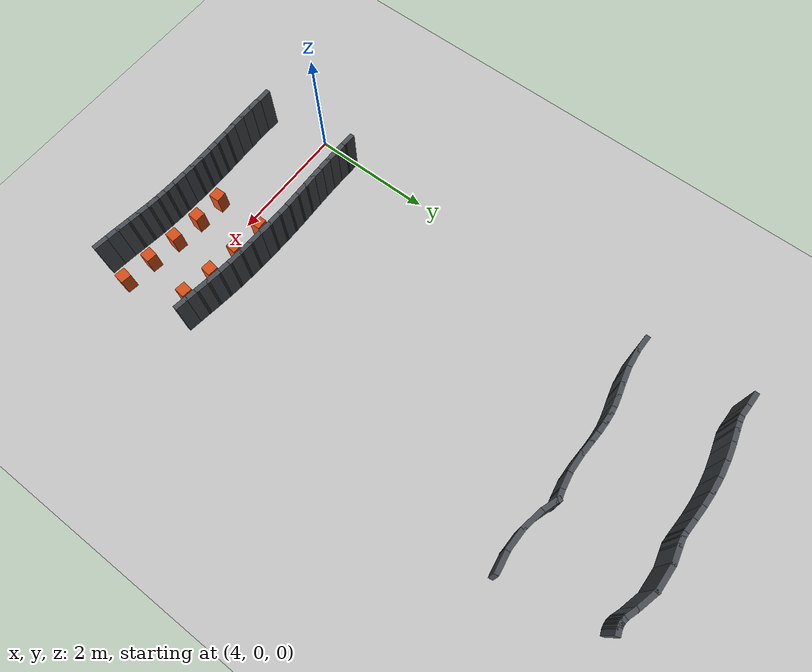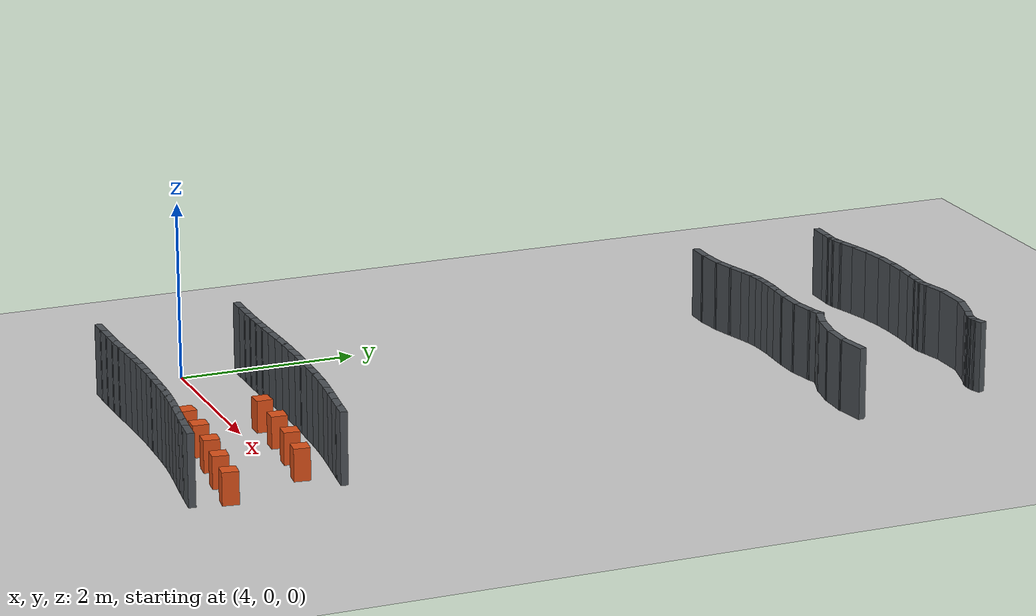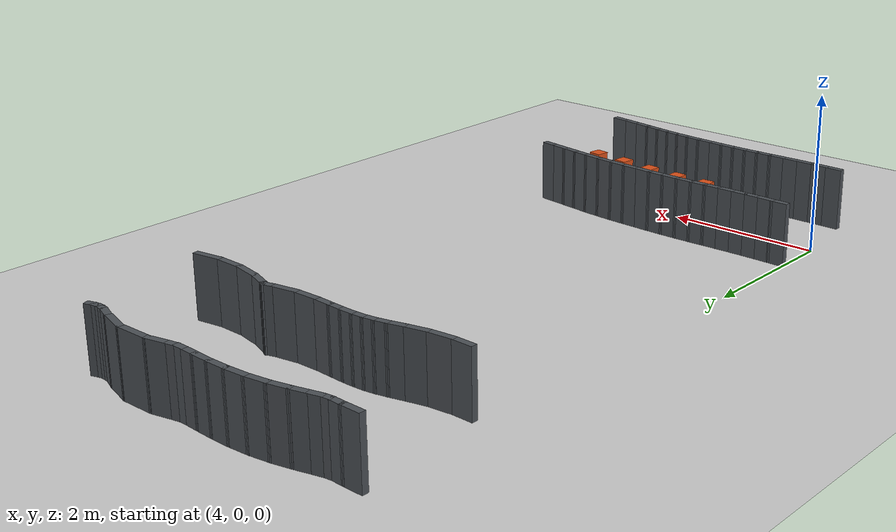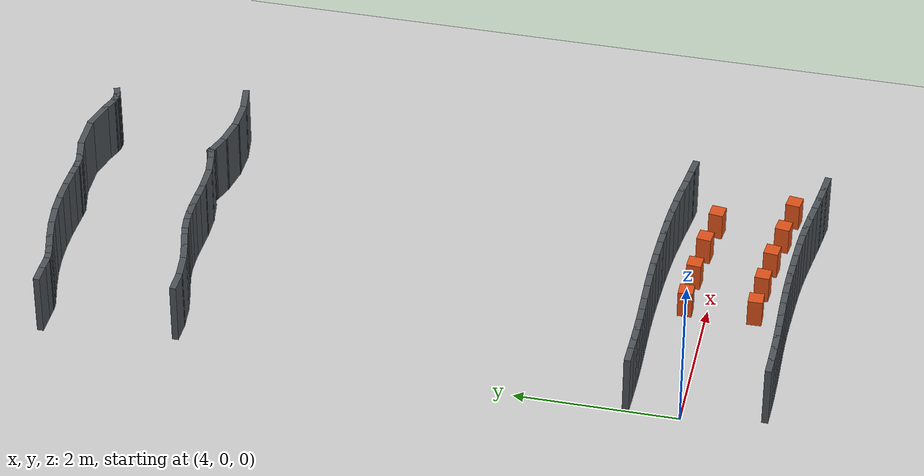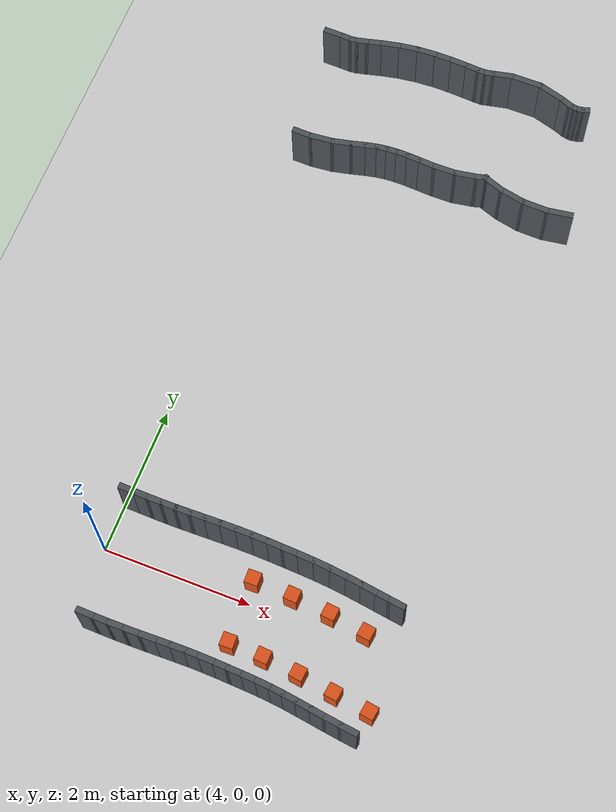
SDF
<sdf version="1.10">
 <world name="kookmin_xycar_track">
  <model name="slam_map">
   <static>true</static>
   <link name="map_floor">
    <pose>6.370000 4.105000 0 0 0 0</pose>
    <collision name="floor_collision">
     <pose>0 0 -0.020 0 0 0</pose>
     <geometry><box><size>22.500000 15.850000 0.040000</size></box></geometry>
     <surface><friction><ode><mu>50</mu><mu2>50</mu2></ode></friction></surface>
    </collision>
    <visual name="map_texture">
     <pose>0 0 0.002 0 0 0</pose>
     <geometry><plane><normal>0 0 1</normal><size>22.500000 15.850000</size></plane></geometry>
     <material>
      <pbr>
       <metal>
        <albedo_map>file://maps/slam_glass_balanced/slam_glass_balanced_texture.png</albedo_map>
        <roughness>1</roughness>
        <metalness>0</metalness>
       </metal>
      </pbr>
     </material>
    </visual>
   </link>
   <link name="route_wall_0004">
    <pose>7.930467 6.273002 0.400000 0 0 -2.993469138</pose>
    <collision name="collision">
     <geometry><box><size>0.377185 0.080000 0.800000</size></box></geometry>
    </collision>
    <visual name="visual">
     <geometry><box><size>0.377185 0.080000 0.800000</size></box></geometry>
     <material>
      <ambient>0.3000 0.3200 0.3400 1.0000</ambient>
      <diffuse>0.3000 0.3200 0.3400 1.0000</diffuse>
     </material>
    </visual>
   </link>
   <link name="route_wall_0005">
    <pose>7.593095 6.252334 0.400000 0 0 3.116901750</pose>
    <collision name="collision">
     <geometry><box><size>0.381355 0.080000 0.800000</size></box></geometry>
    </collision>
    <visual name="visual">
     <geometry><box><size>0.381355 0.080000 0.800000</size></box></geometry>
     <material>
      <ambient>0.3000 0.3200 0.3400 1.0000</ambient>
      <diffuse>0.3000 0.3200 0.3400 1.0000</diffuse>
     </material>
    </visual>
   </link>
   <link name="route_wall_0006">
    <pose>7.259372 6.289112 0.400000 0 0 2.944524645</pose>
    <collision name="collision">
     <geometry><box><size>0.372634 0.080000 0.800000</size></box></geometry>
    </collision>
    <visual name="visual">
     <geometry><box><size>0.372634 0.080000 0.800000</size></box></geometry>
     <material>
      <ambient>0.3000 0.3200 0.3400 1.0000</ambient>
      <diffuse>0.3000 0.3200 0.3400 1.0000</diffuse>
     </material>
    </visual>
   </link>
   <link name="route_wall_0007">
    <pose>6.981278 6.362665 0.400000 0 0 2.799193738</pose>
    <collision name="collision">
     <geometry><box><size>0.284166 0.080000 0.800000</size></box></geometry>
    </collision>
    <visual name="visual">
     <geometry><box><size>0.284166 0.080000 0.800000</size></box></geometry>
     <material>
      <ambient>0.3000 0.3200 0.3400 1.0000</ambient>
      <diffuse>0.3000 0.3200 0.3400 1.0000</diffuse>
     </material>
    </visual>
   </link>
   <link name="route_wall_0008">
    <pose>6.844776 6.416185 0.400000 0 0 2.613993806</pose>
    <collision name="collision">
     <geometry><box><size>0.089781 0.080000 0.800000</size></box></geometry>
    </collision>
    <visual name="visual">
     <geometry><box><size>0.089781 0.080000 0.800000</size></box></geometry>
     <material>
      <ambient>0.3000 0.3200 0.3400 1.0000</ambient>
      <diffuse>0.3000 0.3200 0.3400 1.0000</diffuse>
     </material>
    </visual>
   </link>
   <link name="route_wall_0009">
    <pose>6.833306 6.425547 0.400000 0 0 -0.305906039</pose>
    <collision name="collision">
     <geometry><box><size>0.061049 0.080000 0.800000</size></box></geometry>
    </collision>
    <visual name="visual">
     <geometry><box><size>0.061049 0.080000 0.800000</size></box></geometry>
     <material>
      <ambient>0.3000 0.3200 0.3400 1.0000</ambient>
      <diffuse>0.3000 0.3200 0.3400 1.0000</diffuse>
     </material>
    </visual>
   </link>
   <link name="route_wall_0010">
    <pose>6.776032 6.404820 0.400000 0 0 -2.886426362</pose>
    <collision name="collision">
     <geometry><box><size>0.179125 0.080000 0.800000</size></box></geometry>
    </collision>
    <visual name="visual">
     <geometry><box><size>0.179125 0.080000 0.800000</size></box></geometry>
     <material>
      <ambient>0.3000 0.3200 0.3400 1.0000</ambient>
      <diffuse>0.3000 0.3200 0.3400 1.0000</diffuse>
     </material>
    </visual>
   </link>
   <link name="route_wall_0011">
    <pose>6.565508 6.363926 0.400000 0 0 -2.980067752</pose>
    <collision name="collision">
     <geometry><box><size>0.330206 0.080000 0.800000</size></box></geometry>
    </collision>
    <visual name="visual">
     <geometry><box><size>0.330206 0.080000 0.800000</size></box></geometry>
     <material>
      <ambient>0.3000 0.3200 0.3400 1.0000</ambient>
      <diffuse>0.3000 0.3200 0.3400 1.0000</diffuse>
     </material>
    </visual>
   </link>
   <link name="route_wall_0012">
    <pose>6.276092 6.338794 0.400000 0 0 -3.129314466</pose>
    <collision name="collision">
     <geometry><box><size>0.332426 0.080000 0.800000</size></box></geometry>
    </collision>
    <visual name="visual">
     <geometry><box><size>0.332426 0.080000 0.800000</size></box></geometry>
     <material>
      <ambient>0.3000 0.3200 0.3400 1.0000</ambient>
      <diffuse>0.3000 0.3200 0.3400 1.0000</diffuse>
     </material>
    </visual>
   </link>
   <link name="route_wall_0013">
    <pose>6.018642 6.343261 0.400000 0 0 3.085369669</pose>
    <collision name="collision">
     <geometry><box><size>0.262846 0.080000 0.800000</size></box></geometry>
    </collision>
    <visual name="visual">
     <geometry><box><size>0.262846 0.080000 0.800000</size></box></geometry>
     <material>
      <ambient>0.3000 0.3200 0.3400 1.0000</ambient>
      <diffuse>0.3000 0.3200 0.3400 1.0000</diffuse>
     </material>
    </visual>
   </link>
   <link name="route_wall_0014">
    <pose>5.818519 6.354339 0.400000 0 0 3.087443822</pose>
    <collision name="collision">
     <geometry><box><size>0.218013 0.080000 0.800000</size></box></geometry>
    </collision>
    <visual name="visual">
     <geometry><box><size>0.218013 0.080000 0.800000</size></box></geometry>
     <material>
      <ambient>0.3000 0.3200 0.3400 1.0000</ambient>
      <diffuse>0.3000 0.3200 0.3400 1.0000</diffuse>
     </material>
    </visual>
   </link>
   <link name="route_wall_0015">
    <pose>5.651457 6.359594 0.400000 0 0 3.135991821</pose>
    <collision name="collision">
     <geometry><box><size>0.196375 0.080000 0.800000</size></box></geometry>
    </collision>
    <visual name="visual">
     <geometry><box><size>0.196375 0.080000 0.800000</size></box></geometry>
     <material>
      <ambient>0.3000 0.3200 0.3400 1.0000</ambient>
      <diffuse>0.3000 0.3200 0.3400 1.0000</diffuse>
     </material>
    </visual>
   </link>
   <link name="route_wall_0016">
    <pose>5.501870 6.356388 0.400000 0 0 -3.090601143</pose>
    <collision name="collision">
     <geometry><box><size>0.182986 0.080000 0.800000</size></box></geometry>
    </collision>
    <visual name="visual">
     <geometry><box><size>0.182986 0.080000 0.800000</size></box></geometry>
     <material>
      <ambient>0.3000 0.3200 0.3400 1.0000</ambient>
      <diffuse>0.3000 0.3200 0.3400 1.0000</diffuse>
     </material>
    </visual>
   </link>
   <link name="route_wall_0017">
    <pose>5.362836 6.343578 0.400000 0 0 -3.006883744</pose>
    <collision name="collision">
     <geometry><box><size>0.176505 0.080000 0.800000</size></box></geometry>
    </collision>
    <visual name="visual">
     <geometry><box><size>0.176505 0.080000 0.800000</size></box></geometry>
     <material>
      <ambient>0.3000 0.3200 0.3400 1.0000</ambient>
      <diffuse>0.3000 0.3200 0.3400 1.0000</diffuse>
     </material>
    </visual>
   </link>
   <link name="route_wall_0018">
    <pose>5.220229 6.318387 0.400000 0 0 -2.931027820</pose>
    <collision name="collision">
     <geometry><box><size>0.193333 0.080000 0.800000</size></box></geometry>
    </collision>
    <visual name="visual">
     <geometry><box><size>0.193333 0.080000 0.800000</size></box></geometry>
     <material>
      <ambient>0.3000 0.3200 0.3400 1.0000</ambient>
      <diffuse>0.3000 0.3200 0.3400 1.0000</diffuse>
     </material>
    </visual>
   </link>
   <link name="route_wall_0019">
    <pose>5.051302 6.278580 0.400000 0 0 -2.893664224</pose>
    <collision name="collision">
     <geometry><box><size>0.233834 0.080000 0.800000</size></box></geometry>
    </collision>
    <visual name="visual">
     <geometry><box><size>0.233834 0.080000 0.800000</size></box></geometry>
     <material>
      <ambient>0.3000 0.3200 0.3400 1.0000</ambient>
      <diffuse>0.3000 0.3200 0.3400 1.0000</diffuse>
     </material>
    </visual>
   </link>
   <link name="route_wall_0020">
    <pose>4.829941 6.226788 0.400000 0 0 -2.925197887</pose>
    <collision name="collision">
     <geometry><box><size>0.300898 0.080000 0.800000</size></box></geometry>
    </collision>
    <visual name="visual">
     <geometry><box><size>0.300898 0.080000 0.800000</size></box></geometry>
     <material>
      <ambient>0.3000 0.3200 0.3400 1.0000</ambient>
      <diffuse>0.3000 0.3200 0.3400 1.0000</diffuse>
     </material>
    </visual>
   </link>
   <link name="route_wall_0021">
    <pose>4.551450 6.184124 0.400000 0 0 -3.044897436</pose>
    <collision name="collision">
     <geometry><box><size>0.343587 0.080000 0.800000</size></box></geometry>
    </collision>
    <visual name="visual">
     <geometry><box><size>0.343587 0.080000 0.800000</size></box></geometry>
     <material>
      <ambient>0.3000 0.3200 0.3400 1.0000</ambient>
      <diffuse>0.3000 0.3200 0.3400 1.0000</diffuse>
     </material>
    </visual>
   </link>
   <link name="route_wall_0022">
    <pose>4.276502 6.172698 0.400000 0 0 3.115537577</pose>
    <collision name="collision">
     <geometry><box><size>0.287813 0.080000 0.800000</size></box></geometry>
    </collision>
    <visual name="visual">
     <geometry><box><size>0.287813 0.080000 0.800000</size></box></geometry>
     <material>
      <ambient>0.3000 0.3200 0.3400 1.0000</ambient>
      <diffuse>0.3000 0.3200 0.3400 1.0000</diffuse>
     </material>
    </visual>
   </link>
   <link name="route_wall_0112">
    <pose>4.113866 0.652931 0.400000 0 0 -0.020634342</pose>
    <collision name="collision">
     <geometry><box><size>0.230442 0.080000 0.800000</size></box></geometry>
    </collision>
    <visual name="visual">
     <geometry><box><size>0.230442 0.080000 0.800000</size></box></geometry>
     <material>
      <ambient>0.3000 0.3200 0.3400 1.0000</ambient>
      <diffuse>0.3000 0.3200 0.3400 1.0000</diffuse>
     </material>
    </visual>
   </link>
   <link name="route_wall_0113">
    <pose>4.306378 0.648936 0.400000 0 0 -0.020867692</pose>
    <collision name="collision">
     <geometry><box><size>0.234666 0.080000 0.800000</size></box></geometry>
    </collision>
    <visual name="visual">
     <geometry><box><size>0.234666 0.080000 0.800000</size></box></geometry>
     <material>
      <ambient>0.3000 0.3200 0.3400 1.0000</ambient>
      <diffuse>0.3000 0.3200 0.3400 1.0000</diffuse>
     </material>
    </visual>
   </link>
   <link name="route_wall_0114">
    <pose>4.497941 0.646086 0.400000 0 0 -0.008681300</pose>
    <collision name="collision">
     <geometry><box><size>0.228509 0.080000 0.800000</size></box></geometry>
    </collision>
    <visual name="visual">
     <geometry><box><size>0.228509 0.080000 0.800000</size></box></geometry>
     <material>
      <ambient>0.3000 0.3200 0.3400 1.0000</ambient>
      <diffuse>0.3000 0.3200 0.3400 1.0000</diffuse>
     </material>
    </visual>
   </link>
   <link name="route_wall_0115">
    <pose>4.686670 0.645894 0.400000 0 0 0.006626470</pose>
    <collision name="collision">
     <geometry><box><size>0.228961 0.080000 0.800000</size></box></geometry>
    </collision>
    <visual name="visual">
     <geometry><box><size>0.228961 0.080000 0.800000</size></box></geometry>
     <material>
      <ambient>0.3000 0.3200 0.3400 1.0000</ambient>
      <diffuse>0.3000 0.3200 0.3400 1.0000</diffuse>
     </material>
    </visual>
   </link>
   <link name="route_wall_0116">
    <pose>4.876791 0.648207 0.400000 0 0 0.017634129</pose>
    <collision name="collision">
     <geometry><box><size>0.231315 0.080000 0.800000</size></box></geometry>
    </collision>
    <visual name="visual">
     <geometry><box><size>0.231315 0.080000 0.800000</size></box></geometry>
     <material>
      <ambient>0.3000 0.3200 0.3400 1.0000</ambient>
      <diffuse>0.3000 0.3200 0.3400 1.0000</diffuse>
     </material>
    </visual>
   </link>
   <link name="route_wall_0117">
    <pose>5.070866 0.652561 0.400000 0 0 0.027090284</pose>
    <collision name="collision">
     <geometry><box><size>0.236938 0.080000 0.800000</size></box></geometry>
    </collision>
    <visual name="visual">
     <geometry><box><size>0.236938 0.080000 0.800000</size></box></geometry>
     <material>
      <ambient>0.3000 0.3200 0.3400 1.0000</ambient>
      <diffuse>0.3000 0.3200 0.3400 1.0000</diffuse>
     </material>
    </visual>
   </link>
   <link name="route_wall_0118">
    <pose>5.271370 0.657707 0.400000 0 0 0.024284824</pose>
    <collision name="collision">
     <geometry><box><size>0.244202 0.080000 0.800000</size></box></geometry>
    </collision>
    <visual name="visual">
     <geometry><box><size>0.244202 0.080000 0.800000</size></box></geometry>
     <material>
      <ambient>0.3000 0.3200 0.3400 1.0000</ambient>
      <diffuse>0.3000 0.3200 0.3400 1.0000</diffuse>
     </material>
    </visual>
   </link>
   <link name="route_wall_0119">
    <pose>5.479330 0.661855 0.400000 0 0 0.015758567</pose>
    <collision name="collision">
     <geometry><box><size>0.251806 0.080000 0.800000</size></box></geometry>
    </collision>
    <visual name="visual">
     <geometry><box><size>0.251806 0.080000 0.800000</size></box></geometry>
     <material>
      <ambient>0.3000 0.3200 0.3400 1.0000</ambient>
      <diffuse>0.3000 0.3200 0.3400 1.0000</diffuse>
     </material>
    </visual>
   </link>
   <link name="route_wall_0120">
    <pose>5.692632 0.662952 0.400000 0 0 -0.005328539</pose>
    <collision name="collision">
     <geometry><box><size>0.254827 0.080000 0.800000</size></box></geometry>
    </collision>
    <visual name="visual">
     <geometry><box><size>0.254827 0.080000 0.800000</size></box></geometry>
     <material>
      <ambient>0.3000 0.3200 0.3400 1.0000</ambient>
      <diffuse>0.3000 0.3200 0.3400 1.0000</diffuse>
     </material>
    </visual>
   </link>
   <link name="route_wall_0121">
    <pose>5.906633 0.660115 0.400000 0 0 -0.021245334</pose>
    <collision name="collision">
     <geometry><box><size>0.253226 0.080000 0.800000</size></box></geometry>
    </collision>
    <visual name="visual">
     <geometry><box><size>0.253226 0.080000 0.800000</size></box></geometry>
     <material>
      <ambient>0.3000 0.3200 0.3400 1.0000</ambient>
      <diffuse>0.3000 0.3200 0.3400 1.0000</diffuse>
     </material>
    </visual>
   </link>
   <link name="route_wall_0122">
    <pose>6.116467 0.653872 0.400000 0 0 -0.038505632</pose>
    <collision name="collision">
     <geometry><box><size>0.246643 0.080000 0.800000</size></box></geometry>
    </collision>
    <visual name="visual">
     <geometry><box><size>0.246643 0.080000 0.800000</size></box></geometry>
     <material>
      <ambient>0.3000 0.3200 0.3400 1.0000</ambient>
      <diffuse>0.3000 0.3200 0.3400 1.0000</diffuse>
     </material>
    </visual>
   </link>
   <link name="route_wall_0123">
    <pose>6.322253 0.645955 0.400000 0 0 -0.038403887</pose>
    <collision name="collision">
     <geometry><box><size>0.245232 0.080000 0.800000</size></box></geometry>
    </collision>
    <visual name="visual">
     <geometry><box><size>0.245232 0.080000 0.800000</size></box></geometry>
     <material>
      <ambient>0.3000 0.3200 0.3400 1.0000</ambient>
      <diffuse>0.3000 0.3200 0.3400 1.0000</diffuse>
     </material>
    </visual>
   </link>
   <link name="route_wall_0124">
    <pose>6.531603 0.636413 0.400000 0 0 -0.052398741</pose>
    <collision name="collision">
     <geometry><box><size>0.253913 0.080000 0.800000</size></box></geometry>
    </collision>
    <visual name="visual">
     <geometry><box><size>0.253913 0.080000 0.800000</size></box></geometry>
     <material>
      <ambient>0.3000 0.3200 0.3400 1.0000</ambient>
      <diffuse>0.3000 0.3200 0.3400 1.0000</diffuse>
     </material>
    </visual>
   </link>
   <link name="route_wall_0125">
    <pose>6.749048 0.622662 0.400000 0 0 -0.073528160</pose>
    <collision name="collision">
     <geometry><box><size>0.261871 0.080000 0.800000</size></box></geometry>
    </collision>
    <visual name="visual">
     <geometry><box><size>0.261871 0.080000 0.800000</size></box></geometry>
     <material>
      <ambient>0.3000 0.3200 0.3400 1.0000</ambient>
      <diffuse>0.3000 0.3200 0.3400 1.0000</diffuse>
     </material>
    </visual>
   </link>
   <link name="route_wall_0126">
    <pose>6.970202 0.602706 0.400000 0 0 -0.106427164</pose>
    <collision name="collision">
     <geometry><box><size>0.262294 0.080000 0.800000</size></box></geometry>
    </collision>
    <visual name="visual">
     <geometry><box><size>0.262294 0.080000 0.800000</size></box></geometry>
     <material>
      <ambient>0.3000 0.3200 0.3400 1.0000</ambient>
      <diffuse>0.3000 0.3200 0.3400 1.0000</diffuse>
     </material>
    </visual>
   </link>
   <link name="route_wall_0127">
    <pose>7.185807 0.577322 0.400000 0 0 -0.128489143</pose>
    <collision name="collision">
     <geometry><box><size>0.251920 0.080000 0.800000</size></box></geometry>
    </collision>
    <visual name="visual">
     <geometry><box><size>0.251920 0.080000 0.800000</size></box></geometry>
     <material>
      <ambient>0.3000 0.3200 0.3400 1.0000</ambient>
      <diffuse>0.3000 0.3200 0.3400 1.0000</diffuse>
     </material>
    </visual>
   </link>
   <link name="route_wall_0128">
    <pose>7.391892 0.549849 0.400000 0 0 -0.136724110</pose>
    <collision name="collision">
     <geometry><box><size>0.243901 0.080000 0.800000</size></box></geometry>
    </collision>
    <visual name="visual">
     <geometry><box><size>0.243901 0.080000 0.800000</size></box></geometry>
     <material>
      <ambient>0.3000 0.3200 0.3400 1.0000</ambient>
      <diffuse>0.3000 0.3200 0.3400 1.0000</diffuse>
     </material>
    </visual>
   </link>
   <link name="route_wall_0129">
    <pose>7.589911 0.522367 0.400000 0 0 -0.139124924</pose>
    <collision name="collision">
     <geometry><box><size>0.235933 0.080000 0.800000</size></box></geometry>
    </collision>
    <visual name="visual">
     <geometry><box><size>0.235933 0.080000 0.800000</size></box></geometry>
     <material>
      <ambient>0.3000 0.3200 0.3400 1.0000</ambient>
      <diffuse>0.3000 0.3200 0.3400 1.0000</diffuse>
     </material>
    </visual>
   </link>
   <link name="route_wall_0130">
    <pose>7.781123 0.496697 0.400000 0 0 -0.127603444</pose>
    <collision name="collision">
     <geometry><box><size>0.229928 0.080000 0.800000</size></box></geometry>
    </collision>
    <visual name="visual">
     <geometry><box><size>0.229928 0.080000 0.800000</size></box></geometry>
     <material>
      <ambient>0.3000 0.3200 0.3400 1.0000</ambient>
      <diffuse>0.3000 0.3200 0.3400 1.0000</diffuse>
     </material>
    </visual>
   </link>
   <link name="route_wall_0217">
    <pose>7.759617 7.898724 0.400000 0 0 -2.816718721</pose>
    <collision name="collision">
     <geometry><box><size>0.117077 0.080000 0.800000</size></box></geometry>
    </collision>
    <visual name="visual">
     <geometry><box><size>0.117077 0.080000 0.800000</size></box></geometry>
     <material>
      <ambient>0.3000 0.3200 0.3400 1.0000</ambient>
      <diffuse>0.3000 0.3200 0.3400 1.0000</diffuse>
     </material>
    </visual>
   </link>
   <link name="route_wall_0218">
    <pose>7.692638 7.881691 0.400000 0 0 -2.987450195</pose>
    <collision name="collision">
     <geometry><box><size>0.101644 0.080000 0.800000</size></box></geometry>
    </collision>
    <visual name="visual">
     <geometry><box><size>0.101644 0.080000 0.800000</size></box></geometry>
     <material>
      <ambient>0.3000 0.3200 0.3400 1.0000</ambient>
      <diffuse>0.3000 0.3200 0.3400 1.0000</diffuse>
     </material>
    </visual>
   </link>
   <link name="route_wall_0219">
    <pose>7.633518 7.877642 0.400000 0 0 3.117767312</pose>
    <collision name="collision">
     <geometry><box><size>0.097343 0.080000 0.800000</size></box></geometry>
    </collision>
    <visual name="visual">
     <geometry><box><size>0.097343 0.080000 0.800000</size></box></geometry>
     <material>
      <ambient>0.3000 0.3200 0.3400 1.0000</ambient>
      <diffuse>0.3000 0.3200 0.3400 1.0000</diffuse>
     </material>
    </visual>
   </link>
   <link name="route_wall_0220">
    <pose>7.572401 7.885268 0.400000 0 0 2.930839002</pose>
    <collision name="collision">
     <geometry><box><size>0.106376 0.080000 0.800000</size></box></geometry>
    </collision>
    <visual name="visual">
     <geometry><box><size>0.106376 0.080000 0.800000</size></box></geometry>
     <material>
      <ambient>0.3000 0.3200 0.3400 1.0000</ambient>
      <diffuse>0.3000 0.3200 0.3400 1.0000</diffuse>
     </material>
    </visual>
   </link>
   <link name="route_wall_0221">
    <pose>7.467574 7.919889 0.400000 0 0 2.776312997</pose>
    <collision name="collision">
     <geometry><box><size>0.194970 0.080000 0.800000</size></box></geometry>
    </collision>
    <visual name="visual">
     <geometry><box><size>0.194970 0.080000 0.800000</size></box></geometry>
     <material>
      <ambient>0.3000 0.3200 0.3400 1.0000</ambient>
      <diffuse>0.3000 0.3200 0.3400 1.0000</diffuse>
     </material>
    </visual>
   </link>
   <link name="route_wall_0222">
    <pose>7.226743 7.995637 0.400000 0 0 2.863629676</pose>
    <collision name="collision">
     <geometry><box><size>0.390366 0.080000 0.800000</size></box></geometry>
    </collision>
    <visual name="visual">
     <geometry><box><size>0.390366 0.080000 0.800000</size></box></geometry>
     <material>
      <ambient>0.3000 0.3200 0.3400 1.0000</ambient>
      <diffuse>0.3000 0.3200 0.3400 1.0000</diffuse>
     </material>
    </visual>
   </link>
   <link name="route_wall_0223">
    <pose>6.849917 8.042780 0.400000 0 0 -3.137147000</pose>
    <collision name="collision">
     <geometry><box><size>0.456740 0.080000 0.800000</size></box></geometry>
    </collision>
    <visual name="visual">
     <geometry><box><size>0.456740 0.080000 0.800000</size></box></geometry>
     <material>
      <ambient>0.3000 0.3200 0.3400 1.0000</ambient>
      <diffuse>0.3000 0.3200 0.3400 1.0000</diffuse>
     </material>
    </visual>
   </link>
   <link name="route_wall_0224">
    <pose>6.514324 8.014555 0.400000 0 0 -2.930226066</pose>
    <collision name="collision">
     <geometry><box><size>0.300242 0.080000 0.800000</size></box></geometry>
    </collision>
    <visual name="visual">
     <geometry><box><size>0.300242 0.080000 0.800000</size></box></geometry>
     <material>
      <ambient>0.3000 0.3200 0.3400 1.0000</ambient>
      <diffuse>0.3000 0.3200 0.3400 1.0000</diffuse>
     </material>
    </visual>
   </link>
   <link name="route_wall_0225">
    <pose>6.333756 7.976833 0.400000 0 0 -2.948632149</pose>
    <collision name="collision">
     <geometry><box><size>0.148702 0.080000 0.800000</size></box></geometry>
    </collision>
    <visual name="visual">
     <geometry><box><size>0.148702 0.080000 0.800000</size></box></geometry>
     <material>
      <ambient>0.3000 0.3200 0.3400 1.0000</ambient>
      <diffuse>0.3000 0.3200 0.3400 1.0000</diffuse>
     </material>
    </visual>
   </link>
   <link name="route_wall_0226">
    <pose>6.227181 7.967408 0.400000 0 0 3.122867813</pose>
    <collision name="collision">
     <geometry><box><size>0.146484 0.080000 0.800000</size></box></geometry>
    </collision>
    <visual name="visual">
     <geometry><box><size>0.146484 0.080000 0.800000</size></box></geometry>
     <material>
      <ambient>0.3000 0.3200 0.3400 1.0000</ambient>
      <diffuse>0.3000 0.3200 0.3400 1.0000</diffuse>
     </material>
    </visual>
   </link>
   <link name="route_wall_0227">
    <pose>6.085860 7.973711 0.400000 0 0 3.081424764</pose>
    <collision name="collision">
     <geometry><box><size>0.216495 0.080000 0.800000</size></box></geometry>
    </collision>
    <visual name="visual">
     <geometry><box><size>0.216495 0.080000 0.800000</size></box></geometry>
     <material>
      <ambient>0.3000 0.3200 0.3400 1.0000</ambient>
      <diffuse>0.3000 0.3200 0.3400 1.0000</diffuse>
     </material>
    </visual>
   </link>
   <link name="route_wall_0228">
    <pose>5.887265 7.984747 0.400000 0 0 3.089793446</pose>
    <collision name="collision">
     <geometry><box><size>0.261313 0.080000 0.800000</size></box></geometry>
    </collision>
    <visual name="visual">
     <geometry><box><size>0.261313 0.080000 0.800000</size></box></geometry>
     <material>
      <ambient>0.3000 0.3200 0.3400 1.0000</ambient>
      <diffuse>0.3000 0.3200 0.3400 1.0000</diffuse>
     </material>
    </visual>
   </link>
   <link name="route_wall_0229">
    <pose>5.655298 7.991016 0.400000 0 0 3.137148228</pose>
    <collision name="collision">
     <geometry><box><size>0.282919 0.080000 0.800000</size></box></geometry>
    </collision>
    <visual name="visual">
     <geometry><box><size>0.282919 0.080000 0.800000</size></box></geometry>
     <material>
      <ambient>0.3000 0.3200 0.3400 1.0000</ambient>
      <diffuse>0.3000 0.3200 0.3400 1.0000</diffuse>
     </material>
    </visual>
   </link>
   <link name="route_wall_0230">
    <pose>5.405904 7.984579 0.400000 0 0 -3.087117626</pose>
    <collision name="collision">
     <geometry><box><size>0.296253 0.080000 0.800000</size></box></geometry>
    </collision>
    <visual name="visual">
     <geometry><box><size>0.296253 0.080000 0.800000</size></box></geometry>
     <material>
      <ambient>0.3000 0.3200 0.3400 1.0000</ambient>
      <diffuse>0.3000 0.3200 0.3400 1.0000</diffuse>
     </material>
    </visual>
   </link>
   <link name="route_wall_0231">
    <pose>5.147769 7.960113 0.400000 0 0 -3.008057822</pose>
    <collision name="collision">
     <geometry><box><size>0.302735 0.080000 0.800000</size></box></geometry>
    </collision>
    <visual name="visual">
     <geometry><box><size>0.302735 0.080000 0.800000</size></box></geometry>
     <material>
      <ambient>0.3000 0.3200 0.3400 1.0000</ambient>
      <diffuse>0.3000 0.3200 0.3400 1.0000</diffuse>
     </material>
    </visual>
   </link>
   <link name="route_wall_0232">
    <pose>4.897210 7.917430 0.400000 0 0 -2.935260134</pose>
    <collision name="collision">
     <geometry><box><size>0.285938 0.080000 0.800000</size></box></geometry>
    </collision>
    <visual name="visual">
     <geometry><box><size>0.285938 0.080000 0.800000</size></box></geometry>
     <material>
      <ambient>0.3000 0.3200 0.3400 1.0000</ambient>
      <diffuse>0.3000 0.3200 0.3400 1.0000</diffuse>
     </material>
    </visual>
   </link>
   <link name="route_wall_0233">
    <pose>4.677214 7.867116 0.400000 0 0 -2.894610053</pose>
    <collision name="collision">
     <geometry><box><size>0.245508 0.080000 0.800000</size></box></geometry>
    </collision>
    <visual name="visual">
     <geometry><box><size>0.245508 0.080000 0.800000</size></box></geometry>
     <material>
      <ambient>0.3000 0.3200 0.3400 1.0000</ambient>
      <diffuse>0.3000 0.3200 0.3400 1.0000</diffuse>
     </material>
    </visual>
   </link>
   <link name="route_wall_0234">
    <pose>4.510288 7.826002 0.400000 0 0 -2.908256946</pose>
    <collision name="collision">
     <geometry><box><size>0.178330 0.080000 0.800000</size></box></geometry>
    </collision>
    <visual name="visual">
     <geometry><box><size>0.178330 0.080000 0.800000</size></box></geometry>
     <material>
      <ambient>0.3000 0.3200 0.3400 1.0000</ambient>
      <diffuse>0.3000 0.3200 0.3400 1.0000</diffuse>
     </material>
    </visual>
   </link>
   <link name="route_wall_0235">
    <pose>4.395523 7.805320 0.400000 0 0 -3.043130363</pose>
    <collision name="collision">
     <geometry><box><size>0.135410 0.080000 0.800000</size></box></geometry>
    </collision>
    <visual name="visual">
     <geometry><box><size>0.135410 0.080000 0.800000</size></box></geometry>
     <material>
      <ambient>0.3000 0.3200 0.3400 1.0000</ambient>
      <diffuse>0.3000 0.3200 0.3400 1.0000</diffuse>
     </material>
    </visual>
   </link>
   <link name="route_wall_0236">
    <pose>4.272407 7.803980 0.400000 0 0 3.097346476</pose>
    <collision name="collision">
     <geometry><box><size>0.191433 0.080000 0.800000</size></box></geometry>
    </collision>
    <visual name="visual">
     <geometry><box><size>0.191433 0.080000 0.800000</size></box></geometry>
     <material>
      <ambient>0.3000 0.3200 0.3400 1.0000</ambient>
      <diffuse>0.3000 0.3200 0.3400 1.0000</diffuse>
     </material>
    </visual>
   </link>
   <link name="route_wall_0237">
    <pose>4.083158 7.809577 0.400000 0 0 3.121805751</pose>
    <collision name="collision">
     <geometry><box><size>0.267257 0.080000 0.800000</size></box></geometry>
    </collision>
    <visual name="visual">
     <geometry><box><size>0.267257 0.080000 0.800000</size></box></geometry>
     <material>
      <ambient>0.3000 0.3200 0.3400 1.0000</ambient>
      <diffuse>0.3000 0.3200 0.3400 1.0000</diffuse>
     </material>
    </visual>
   </link>
   <link name="route_wall_0327">
    <pose>4.277362 -0.982799 0.400000 0 0 -0.020716686</pose>
    <collision name="collision">
     <geometry><box><size>0.244677 0.080000 0.800000</size></box></geometry>
    </collision>
    <visual name="visual">
     <geometry><box><size>0.244677 0.080000 0.800000</size></box></geometry>
     <material>
      <ambient>0.3000 0.3200 0.3400 1.0000</ambient>
      <diffuse>0.3000 0.3200 0.3400 1.0000</diffuse>
     </material>
    </visual>
   </link>
   <link name="route_wall_0328">
    <pose>4.485091 -0.985825 0.400000 0 0 -0.008595794</pose>
    <collision name="collision">
     <geometry><box><size>0.250833 0.080000 0.800000</size></box></geometry>
    </collision>
    <visual name="visual">
     <geometry><box><size>0.250833 0.080000 0.800000</size></box></geometry>
     <material>
      <ambient>0.3000 0.3200 0.3400 1.0000</ambient>
      <diffuse>0.3000 0.3200 0.3400 1.0000</diffuse>
     </material>
    </visual>
   </link>
   <link name="route_wall_0329">
    <pose>4.695693 -0.986046 0.400000 0 0 0.006514708</pose>
    <collision name="collision">
     <geometry><box><size>0.250383 0.080000 0.800000</size></box></geometry>
    </collision>
    <visual name="visual">
     <geometry><box><size>0.250383 0.080000 0.800000</size></box></geometry>
     <material>
      <ambient>0.3000 0.3200 0.3400 1.0000</ambient>
      <diffuse>0.3000 0.3200 0.3400 1.0000</diffuse>
     </material>
    </visual>
   </link>
   <link name="route_wall_0330">
    <pose>4.904879 -0.983530 0.400000 0 0 0.017600229</pose>
    <collision name="collision">
     <geometry><box><size>0.248027 0.080000 0.800000</size></box></geometry>
    </collision>
    <visual name="visual">
     <geometry><box><size>0.248027 0.080000 0.800000</size></box></geometry>
     <material>
      <ambient>0.3000 0.3200 0.3400 1.0000</ambient>
      <diffuse>0.3000 0.3200 0.3400 1.0000</diffuse>
     </material>
    </visual>
   </link>
   <link name="route_wall_0331">
    <pose>5.110042 -0.978967 0.400000 0 0 0.027007010</pose>
    <collision name="collision">
     <geometry><box><size>0.242405 0.080000 0.800000</size></box></geometry>
    </collision>
    <visual name="visual">
     <geometry><box><size>0.242405 0.080000 0.800000</size></box></geometry>
     <material>
      <ambient>0.3000 0.3200 0.3400 1.0000</ambient>
      <diffuse>0.3000 0.3200 0.3400 1.0000</diffuse>
     </material>
    </visual>
   </link>
   <link name="route_wall_0332">
    <pose>5.308749 -0.973858 0.400000 0 0 0.024348830</pose>
    <collision name="collision">
     <geometry><box><size>0.235141 0.080000 0.800000</size></box></geometry>
    </collision>
    <visual name="visual">
     <geometry><box><size>0.235141 0.080000 0.800000</size></box></geometry>
     <material>
      <ambient>0.3000 0.3200 0.3400 1.0000</ambient>
      <diffuse>0.3000 0.3200 0.3400 1.0000</diffuse>
     </material>
    </visual>
   </link>
   <link name="route_wall_0333">
    <pose>5.500047 -0.969968 0.400000 0 0 0.016155066</pose>
    <collision name="collision">
     <geometry><box><size>0.227536 0.080000 0.800000</size></box></geometry>
    </collision>
    <visual name="visual">
     <geometry><box><size>0.227536 0.080000 0.800000</size></box></geometry>
     <material>
      <ambient>0.3000 0.3200 0.3400 1.0000</ambient>
      <diffuse>0.3000 0.3200 0.3400 1.0000</diffuse>
     </material>
    </visual>
   </link>
   <link name="route_wall_0334">
    <pose>5.686052 -0.968964 0.400000 0 0 -0.005541636</pose>
    <collision name="collision">
     <geometry><box><size>0.224501 0.080000 0.800000</size></box></geometry>
    </collision>
    <visual name="visual">
     <geometry><box><size>0.224501 0.080000 0.800000</size></box></geometry>
     <material>
      <ambient>0.3000 0.3200 0.3400 1.0000</ambient>
      <diffuse>0.3000 0.3200 0.3400 1.0000</diffuse>
     </material>
    </visual>
   </link>
   <link name="route_wall_0335">
    <pose>5.871336 -0.971447 0.400000 0 0 -0.021189245</pose>
    <collision name="collision">
     <geometry><box><size>0.226112 0.080000 0.800000</size></box></geometry>
    </collision>
    <visual name="visual">
     <geometry><box><size>0.226112 0.080000 0.800000</size></box></geometry>
     <material>
      <ambient>0.3000 0.3200 0.3400 1.0000</ambient>
      <diffuse>0.3000 0.3200 0.3400 1.0000</diffuse>
     </material>
    </visual>
   </link>
   <link name="route_wall_0336">
    <pose>6.060649 -0.977158 0.400000 0 0 -0.038816501</pose>
    <collision name="collision">
     <geometry><box><size>0.232700 0.080000 0.800000</size></box></geometry>
    </collision>
    <visual name="visual">
     <geometry><box><size>0.232700 0.080000 0.800000</size></box></geometry>
     <material>
      <ambient>0.3000 0.3200 0.3400 1.0000</ambient>
      <diffuse>0.3000 0.3200 0.3400 1.0000</diffuse>
     </material>
    </visual>
   </link>
   <link name="route_wall_0337">
    <pose>6.253912 -0.984604 0.400000 0 0 -0.038204292</pose>
    <collision name="collision">
     <geometry><box><size>0.234112 0.080000 0.800000</size></box></geometry>
    </collision>
    <visual name="visual">
     <geometry><box><size>0.234112 0.080000 0.800000</size></box></geometry>
     <material>
      <ambient>0.3000 0.3200 0.3400 1.0000</ambient>
      <diffuse>0.3000 0.3200 0.3400 1.0000</diffuse>
     </material>
    </visual>
   </link>
   <link name="route_wall_0338">
    <pose>6.443486 -0.993144 0.400000 0 0 -0.052149487</pose>
    <collision name="collision">
     <geometry><box><size>0.225430 0.080000 0.800000</size></box></geometry>
    </collision>
    <visual name="visual">
     <geometry><box><size>0.225430 0.080000 0.800000</size></box></geometry>
     <material>
      <ambient>0.3000 0.3200 0.3400 1.0000</ambient>
      <diffuse>0.3000 0.3200 0.3400 1.0000</diffuse>
     </material>
    </visual>
   </link>
   <link name="route_wall_0339">
    <pose>6.624565 -1.004432 0.400000 0 0 -0.072819903</pose>
    <collision name="collision">
     <geometry><box><size>0.217451 0.080000 0.800000</size></box></geometry>
    </collision>
    <visual name="visual">
     <geometry><box><size>0.217451 0.080000 0.800000</size></box></geometry>
     <material>
      <ambient>0.3000 0.3200 0.3400 1.0000</ambient>
      <diffuse>0.3000 0.3200 0.3400 1.0000</diffuse>
     </material>
    </visual>
   </link>
   <link name="route_wall_0340">
    <pose>6.801062 -1.020348 0.400000 0 0 -0.107089658</pose>
    <collision name="collision">
     <geometry><box><size>0.217026 0.080000 0.800000</size></box></geometry>
    </collision>
    <visual name="visual">
     <geometry><box><size>0.217026 0.080000 0.800000</size></box></geometry>
     <material>
      <ambient>0.3000 0.3200 0.3400 1.0000</ambient>
      <diffuse>0.3000 0.3200 0.3400 1.0000</diffuse>
     </material>
    </visual>
   </link>
   <link name="route_wall_0341">
    <pose>6.981997 -1.041856 0.400000 0 0 -0.128917422</pose>
    <collision name="collision">
     <geometry><box><size>0.227413 0.080000 0.800000</size></box></geometry>
    </collision>
    <visual name="visual">
     <geometry><box><size>0.227413 0.080000 0.800000</size></box></geometry>
     <material>
      <ambient>0.3000 0.3200 0.3400 1.0000</ambient>
      <diffuse>0.3000 0.3200 0.3400 1.0000</diffuse>
     </material>
    </visual>
   </link>
   <link name="route_wall_0342">
    <pose>7.171733 -1.067228 0.400000 0 0 -0.136785142</pose>
    <collision name="collision">
     <geometry><box><size>0.235440 0.080000 0.800000</size></box></geometry>
    </collision>
    <visual name="visual">
     <geometry><box><size>0.235440 0.080000 0.800000</size></box></geometry>
     <material>
      <ambient>0.3000 0.3200 0.3400 1.0000</ambient>
      <diffuse>0.3000 0.3200 0.3400 1.0000</diffuse>
     </material>
    </visual>
   </link>
   <link name="route_wall_0343">
    <pose>7.369264 -1.094644 0.400000 0 0 -0.138995946</pose>
    <collision name="collision">
     <geometry><box><size>0.243410 0.080000 0.800000</size></box></geometry>
    </collision>
    <visual name="visual">
     <geometry><box><size>0.243410 0.080000 0.800000</size></box></geometry>
     <material>
      <ambient>0.3000 0.3200 0.3400 1.0000</ambient>
      <diffuse>0.3000 0.3200 0.3400 1.0000</diffuse>
     </material>
    </visual>
   </link>
   <link name="route_wall_0344">
    <pose>7.573844 -1.122057 0.400000 0 0 -0.127580364</pose>
    <collision name="collision">
     <geometry><box><size>0.249413 0.080000 0.800000</size></box></geometry>
    </collision>
    <visual name="visual">
     <geometry><box><size>0.249413 0.080000 0.800000</size></box></geometry>
     <material>
      <ambient>0.3000 0.3200 0.3400 1.0000</ambient>
      <diffuse>0.3000 0.3200 0.3400 1.0000</diffuse>
     </material>
    </visual>
   </link>
   <link name="route_wall_0345">
    <pose>7.784714 -1.147733 0.400000 0 0 -0.114926032</pose>
    <collision name="collision">
     <geometry><box><size>0.255449 0.080000 0.800000</size></box></geometry>
    </collision>
    <visual name="visual">
     <geometry><box><size>0.255449 0.080000 0.800000</size></box></geometry>
     <material>
      <ambient>0.3000 0.3200 0.3400 1.0000</ambient>
      <diffuse>0.3000 0.3200 0.3400 1.0000</diffuse>
     </material>
    </visual>
   </link>
   <link name="cone_rule_left_00">
    <pose>5.951524 0.266233 0.180000 0 0 0.019637509</pose>
    <collision name="collision">
     <geometry><box><size>0.180000 0.180000 0.360000</size></box></geometry>
    </collision>
    <visual name="visual">
     <geometry><box><size>0.180000 0.180000 0.360000</size></box></geometry>
     <material>
      <ambient>0.8627 0.3137 0.0941 1.0000</ambient>
      <diffuse>0.8627 0.3137 0.0941 1.0000</diffuse>
     </material>
    </visual>
   </link>
   <link name="cone_rule_right_00">
    <pose>5.968215 -0.583603 0.180000 0 0 0.019637509</pose>
    <collision name="collision">
     <geometry><box><size>0.180000 0.180000 0.360000</size></box></geometry>
    </collision>
    <visual name="visual">
     <geometry><box><size>0.180000 0.180000 0.360000</size></box></geometry>
     <material>
      <ambient>0.8627 0.3137 0.0941 1.0000</ambient>
      <diffuse>0.8627 0.3137 0.0941 1.0000</diffuse>
     </material>
    </visual>
   </link>
   <link name="cone_rule_left_01">
    <pose>6.492071 0.247603 0.180000 0 0 -0.063540258</pose>
    <collision name="collision">
     <geometry><box><size>0.180000 0.180000 0.360000</size></box></geometry>
    </collision>
    <visual name="visual">
     <geometry><box><size>0.180000 0.180000 0.360000</size></box></geometry>
     <material>
      <ambient>0.8627 0.3137 0.0941 1.0000</ambient>
      <diffuse>0.8627 0.3137 0.0941 1.0000</diffuse>
     </material>
    </visual>
   </link>
   <link name="cone_rule_right_01">
    <pose>6.438098 -0.600682 0.180000 0 0 -0.063540258</pose>
    <collision name="collision">
     <geometry><box><size>0.180000 0.180000 0.360000</size></box></geometry>
    </collision>
    <visual name="visual">
     <geometry><box><size>0.180000 0.180000 0.360000</size></box></geometry>
     <material>
      <ambient>0.8627 0.3137 0.0941 1.0000</ambient>
      <diffuse>0.8627 0.3137 0.0941 1.0000</diffuse>
     </material>
    </visual>
   </link>
   <link name="cone_rule_left_02">
    <pose>7.014339 0.206136 0.180000 0 0 -0.109807939</pose>
    <collision name="collision">
     <geometry><box><size>0.180000 0.180000 0.360000</size></box></geometry>
    </collision>
    <visual name="visual">
     <geometry><box><size>0.180000 0.180000 0.360000</size></box></geometry>
     <material>
      <ambient>0.8627 0.3137 0.0941 1.0000</ambient>
      <diffuse>0.8627 0.3137 0.0941 1.0000</diffuse>
     </material>
    </visual>
   </link>
   <link name="cone_rule_right_02">
    <pose>6.921189 -0.638745 0.180000 0 0 -0.109807939</pose>
    <collision name="collision">
     <geometry><box><size>0.180000 0.180000 0.360000</size></box></geometry>
    </collision>
    <visual name="visual">
     <geometry><box><size>0.180000 0.180000 0.360000</size></box></geometry>
     <material>
      <ambient>0.8627 0.3137 0.0941 1.0000</ambient>
      <diffuse>0.8627 0.3137 0.0941 1.0000</diffuse>
     </material>
    </visual>
   </link>
   <link name="cone_rule_left_03">
    <pose>7.522692 0.136254 0.180000 0 0 -0.127217988</pose>
    <collision name="collision">
     <geometry><box><size>0.180000 0.180000 0.360000</size></box></geometry>
    </collision>
    <visual name="visual">
     <geometry><box><size>0.180000 0.180000 0.360000</size></box></geometry>
     <material>
      <ambient>0.8627 0.3137 0.0941 1.0000</ambient>
      <diffuse>0.8627 0.3137 0.0941 1.0000</diffuse>
     </material>
    </visual>
   </link>
   <link name="cone_rule_right_03">
    <pose>7.414849 -0.706877 0.180000 0 0 -0.127217988</pose>
    <collision name="collision">
     <geometry><box><size>0.180000 0.180000 0.360000</size></box></geometry>
    </collision>
    <visual name="visual">
     <geometry><box><size>0.180000 0.180000 0.360000</size></box></geometry>
     <material>
      <ambient>0.8627 0.3137 0.0941 1.0000</ambient>
      <diffuse>0.8627 0.3137 0.0941 1.0000</diffuse>
     </material>
    </visual>
   </link>
   <link name="cone_rule_right_04">
    <pose>7.909687 -0.767711 0.180000 0 0 -0.142873870</pose>
    <collision name="collision">
     <geometry><box><size>0.180000 0.180000 0.360000</size></box></geometry>
    </collision>
    <visual name="visual">
     <geometry><box><size>0.180000 0.180000 0.360000</size></box></geometry>
     <material>
      <ambient>0.8627 0.3137 0.0941 1.0000</ambient>
      <diffuse>0.8627 0.3137 0.0941 1.0000</diffuse>
     </material>
    </visual>
   </link>
  </model>
 </world>
</sdf>
